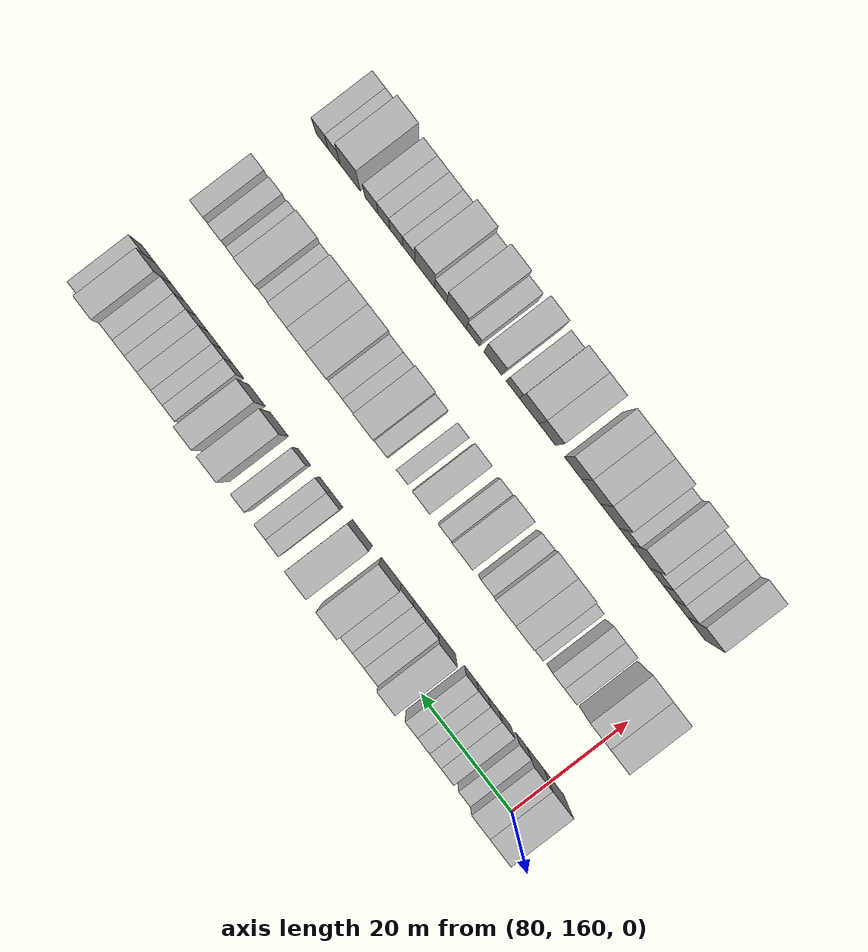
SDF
<sdf version="1.6">
 <world name="default">
  <model name="building_643">
   <static>1</static>
   <pose>82.0000 159.6358 0 0.000000 0.000000 0.000000</pose>
   <link name="link">
    <pose>0 0 4.50 0 0 0</pose>
    <collision name="collision"><geometry><box><size>10.0000 4.3655 9.0000</size></box></geometry></collision>
    <visual name="visual">
     <cast_shadows>0</cast_shadows>
     <geometry><box><size>10.0000 4.3655 9.0000</size></box></geometry>
     <material>
      <script>
       <uri>model://HANNAS_wall/materials/scripts</uri>
       <uri>model://HANNAS_wall/materials/textures</uri>
       <name>vrc/HANNAS_wall</name>
      </script>
     </material>
    </visual>
   </link>
  </model>
  <model name="building_644">
   <static>1</static>
   <pose>82.0000 163.7545 0 0.000000 0.000000 0.000000</pose>
   <link name="link">
    <pose>0 0 4.50 0 0 0</pose>
    <collision name="collision"><geometry><box><size>10.0000 3.8720 9.0000</size></box></geometry></collision>
    <visual name="visual">
     <cast_shadows>0</cast_shadows>
     <geometry><box><size>10.0000 3.8720 9.0000</size></box></geometry>
     <material>
      <script>
       <uri>model://HANNAS_wall/materials/scripts</uri>
       <uri>model://HANNAS_wall/materials/textures</uri>
       <name>vrc/HANNAS_wall</name>
      </script>
     </material>
    </visual>
   </link>
  </model>
  <model name="building_645">
   <static>1</static>
   <pose>82.0000 166.9428 0 0.000000 0.000000 0.000000</pose>
   <link name="link">
    <pose>0 0 3.00 0 0 0</pose>
    <collision name="collision"><geometry><box><size>10.0000 2.5046 6.0000</size></box></geometry></collision>
    <visual name="visual">
     <cast_shadows>0</cast_shadows>
     <geometry><box><size>10.0000 2.5046 6.0000</size></box></geometry>
     <material>
      <script>
       <uri>model://HANNAS_wall/materials/scripts</uri>
       <uri>model://HANNAS_wall/materials/textures</uri>
       <name>vrc/HANNAS_wall</name>
      </script>
     </material>
    </visual>
   </link>
  </model>
  <model name="building_646">
   <static>1</static>
   <pose>82.0000 170.5551 0 0.000000 0.000000 0.000000</pose>
   <link name="link">
    <pose>0 0 3.00 0 0 0</pose>
    <collision name="collision"><geometry><box><size>10.0000 2.7200 6.0000</size></box></geometry></collision>
    <visual name="visual">
     <cast_shadows>0</cast_shadows>
     <geometry><box><size>10.0000 2.7200 6.0000</size></box></geometry>
     <material>
      <script>
       <uri>model://HANNAS_wall/materials/scripts</uri>
       <uri>model://HANNAS_wall/materials/textures</uri>
       <name>vrc/HANNAS_wall</name>
      </script>
     </material>
    </visual>
   </link>
  </model>
  <model name="building_647">
   <static>1</static>
   <pose>82.0000 173.1330 0 0.000000 0.000000 0.000000</pose>
   <link name="link">
    <pose>0 0 3.00 0 0 0</pose>
    <collision name="collision"><geometry><box><size>10.0000 2.4358 6.0000</size></box></geometry></collision>
    <visual name="visual">
     <cast_shadows>0</cast_shadows>
     <geometry><box><size>10.0000 2.4358 6.0000</size></box></geometry>
     <material>
      <script>
       <uri>model://HANNAS_wall/materials/scripts</uri>
       <uri>model://HANNAS_wall/materials/textures</uri>
       <name>vrc/HANNAS_wall</name>
      </script>
     </material>
    </visual>
   </link>
  </model>
  <model name="building_648">
   <static>1</static>
   <pose>82.0000 175.6355 0 0.000000 0.000000 0.000000</pose>
   <link name="link">
    <pose>0 0 3.00 0 0 0</pose>
    <collision name="collision"><geometry><box><size>10.0000 2.5691 6.0000</size></box></geometry></collision>
    <visual name="visual">
     <cast_shadows>0</cast_shadows>
     <geometry><box><size>10.0000 2.5691 6.0000</size></box></geometry>
     <material>
      <script>
       <uri>model://HANNAS_wall/materials/scripts</uri>
       <uri>model://HANNAS_wall/materials/textures</uri>
       <name>vrc/HANNAS_wall</name>
      </script>
     </material>
    </visual>
   </link>
  </model>
  <model name="building_649">
   <static>1</static>
   <pose>82.0000 178.2534 0 0.000000 0.000000 0.000000</pose>
   <link name="link">
    <pose>0 0 3.00 0 0 0</pose>
    <collision name="collision"><geometry><box><size>10.0000 2.6667 6.0000</size></box></geometry></collision>
    <visual name="visual">
     <cast_shadows>0</cast_shadows>
     <geometry><box><size>10.0000 2.6667 6.0000</size></box></geometry>
     <material>
      <script>
       <uri>model://HANNAS_wall/materials/scripts</uri>
       <uri>model://HANNAS_wall/materials/textures</uri>
       <name>vrc/HANNAS_wall</name>
      </script>
     </material>
    </visual>
   </link>
  </model>
  <model name="building_650">
   <static>1</static>
   <pose>82.0000 183.4913 0 0.000000 0.000000 0.000000</pose>
   <link name="link">
    <pose>0 0 4.50 0 0 0</pose>
    <collision name="collision"><geometry><box><size>10.0000 3.8091 9.0000</size></box></geometry></collision>
    <visual name="visual">
     <cast_shadows>0</cast_shadows>
     <geometry><box><size>10.0000 3.8091 9.0000</size></box></geometry>
     <material>
      <script>
       <uri>model://HANNAS_wall/materials/scripts</uri>
       <uri>model://HANNAS_wall/materials/textures</uri>
       <name>vrc/HANNAS_wall</name>
      </script>
     </material>
    </visual>
   </link>
  </model>
  <model name="building_651">
   <static>1</static>
   <pose>82.0000 186.8532 0 0.000000 0.000000 0.000000</pose>
   <link name="link">
    <pose>0 0 3.00 0 0 0</pose>
    <collision name="collision"><geometry><box><size>10.0000 2.9146 6.0000</size></box></geometry></collision>
    <visual name="visual">
     <cast_shadows>0</cast_shadows>
     <geometry><box><size>10.0000 2.9146 6.0000</size></box></geometry>
     <material>
      <script>
       <uri>model://HANNAS_wall/materials/scripts</uri>
       <uri>model://HANNAS_wall/materials/textures</uri>
       <name>vrc/HANNAS_wall</name>
      </script>
     </material>
    </visual>
   </link>
  </model>
  <model name="building_652">
   <static>1</static>
   <pose>82.0000 189.5749 0 0.000000 0.000000 0.000000</pose>
   <link name="link">
    <pose>0 0 3.00 0 0 0</pose>
    <collision name="collision"><geometry><box><size>10.0000 2.5288 6.0000</size></box></geometry></collision>
    <visual name="visual">
     <cast_shadows>0</cast_shadows>
     <geometry><box><size>10.0000 2.5288 6.0000</size></box></geometry>
     <material>
      <script>
       <uri>model://HANNAS_wall/materials/scripts</uri>
       <uri>model://HANNAS_wall/materials/textures</uri>
       <name>vrc/HANNAS_wall</name>
      </script>
     </material>
    </visual>
   </link>
  </model>
  <model name="building_653">
   <static>1</static>
   <pose>82.0000 192.2486 0 0.000000 0.000000 0.000000</pose>
   <link name="link">
    <pose>0 0 3.00 0 0 0</pose>
    <collision name="collision"><geometry><box><size>10.0000 2.8186 6.0000</size></box></geometry></collision>
    <visual name="visual">
     <cast_shadows>0</cast_shadows>
     <geometry><box><size>10.0000 2.8186 6.0000</size></box></geometry>
     <material>
      <script>
       <uri>model://HANNAS_wall/materials/scripts</uri>
       <uri>model://HANNAS_wall/materials/textures</uri>
       <name>vrc/HANNAS_wall</name>
      </script>
     </material>
    </visual>
   </link>
  </model>
  <model name="building_654">
   <static>1</static>
   <pose>82.0000 195.8621 0 0.000000 0.000000 0.000000</pose>
   <link name="link">
    <pose>0 0 4.50 0 0 0</pose>
    <collision name="collision"><geometry><box><size>10.0000 4.4085 9.0000</size></box></geometry></collision>
    <visual name="visual">
     <cast_shadows>0</cast_shadows>
     <geometry><box><size>10.0000 4.4085 9.0000</size></box></geometry>
     <material>
      <script>
       <uri>model://HANNAS_wall/materials/scripts</uri>
       <uri>model://HANNAS_wall/materials/textures</uri>
       <name>vrc/HANNAS_wall</name>
      </script>
     </material>
    </visual>
   </link>
  </model>
  <model name="building_655">
   <static>1</static>
   <pose>82.0000 202.3141 0 0.000000 0.000000 0.000000</pose>
   <link name="link">
    <pose>0 0 4.50 0 0 0</pose>
    <collision name="collision"><geometry><box><size>10.0000 4.4954 9.0000</size></box></geometry></collision>
    <visual name="visual">
     <cast_shadows>0</cast_shadows>
     <geometry><box><size>10.0000 4.4954 9.0000</size></box></geometry>
     <material>
      <script>
       <uri>model://HANNAS_wall/materials/scripts</uri>
       <uri>model://HANNAS_wall/materials/textures</uri>
       <name>vrc/HANNAS_wall</name>
      </script>
     </material>
    </visual>
   </link>
  </model>
  <model name="building_656">
   <static>1</static>
   <pose>82.0000 207.9439 0 0.000000 0.000000 0.000000</pose>
   <link name="link">
    <pose>0 0 3.00 0 0 0</pose>
    <collision name="collision"><geometry><box><size>10.0000 2.7642 6.0000</size></box></geometry></collision>
    <visual name="visual">
     <cast_shadows>0</cast_shadows>
     <geometry><box><size>10.0000 2.7642 6.0000</size></box></geometry>
     <material>
      <script>
       <uri>model://HANNAS_wall/materials/scripts</uri>
       <uri>model://HANNAS_wall/materials/textures</uri>
       <name>vrc/HANNAS_wall</name>
      </script>
     </material>
    </visual>
   </link>
  </model>
  <model name="building_657">
   <static>1</static>
   <pose>82.0000 210.5727 0 0.000000 0.000000 0.000000</pose>
   <link name="link">
    <pose>0 0 3.00 0 0 0</pose>
    <collision name="collision"><geometry><box><size>10.0000 2.4935 6.0000</size></box></geometry></collision>
    <visual name="visual">
     <cast_shadows>0</cast_shadows>
     <geometry><box><size>10.0000 2.4935 6.0000</size></box></geometry>
     <material>
      <script>
       <uri>model://HANNAS_wall/materials/scripts</uri>
       <uri>model://HANNAS_wall/materials/textures</uri>
       <name>vrc/HANNAS_wall</name>
      </script>
     </material>
    </visual>
   </link>
  </model>
  <model name="building_658">
   <static>1</static>
   <pose>82.0000 215.2912 0 0.000000 0.000000 0.000000</pose>
   <link name="link">
    <pose>0 0 3.00 0 0 0</pose>
    <collision name="collision"><geometry><box><size>10.0000 2.9436 6.0000</size></box></geometry></collision>
    <visual name="visual">
     <cast_shadows>0</cast_shadows>
     <geometry><box><size>10.0000 2.9436 6.0000</size></box></geometry>
     <material>
      <script>
       <uri>model://HANNAS_wall/materials/scripts</uri>
       <uri>model://HANNAS_wall/materials/textures</uri>
       <name>vrc/HANNAS_wall</name>
      </script>
     </material>
    </visual>
   </link>
  </model>
  <model name="building_659">
   <static>1</static>
   <pose>82.0000 220.8428 0 0.000000 0.000000 0.000000</pose>
   <link name="link">
    <pose>0 0 4.50 0 0 0</pose>
    <collision name="collision"><geometry><box><size>10.0000 4.1596 9.0000</size></box></geometry></collision>
    <visual name="visual">
     <cast_shadows>0</cast_shadows>
     <geometry><box><size>10.0000 4.1596 9.0000</size></box></geometry>
     <material>
      <script>
       <uri>model://HANNAS_wall/materials/scripts</uri>
       <uri>model://HANNAS_wall/materials/textures</uri>
       <name>vrc/HANNAS_wall</name>
      </script>
     </material>
    </visual>
   </link>
  </model>
  <model name="building_660">
   <static>1</static>
   <pose>82.0000 225.7918 0 0.000000 0.000000 0.000000</pose>
   <link name="link">
    <pose>0 0 4.50 0 0 0</pose>
    <collision name="collision"><geometry><box><size>10.0000 3.7385 9.0000</size></box></geometry></collision>
    <visual name="visual">
     <cast_shadows>0</cast_shadows>
     <geometry><box><size>10.0000 3.7385 9.0000</size></box></geometry>
     <material>
      <script>
       <uri>model://HANNAS_wall/materials/scripts</uri>
       <uri>model://HANNAS_wall/materials/textures</uri>
       <name>vrc/HANNAS_wall</name>
      </script>
     </material>
    </visual>
   </link>
  </model>
  <model name="building_661">
   <static>1</static>
   <pose>82.0000 229.9726 0 0.000000 0.000000 0.000000</pose>
   <link name="link">
    <pose>0 0 3.00 0 0 0</pose>
    <collision name="collision"><geometry><box><size>10.0000 2.6232 6.0000</size></box></geometry></collision>
    <visual name="visual">
     <cast_shadows>0</cast_shadows>
     <geometry><box><size>10.0000 2.6232 6.0000</size></box></geometry>
     <material>
      <script>
       <uri>model://HANNAS_wall/materials/scripts</uri>
       <uri>model://HANNAS_wall/materials/textures</uri>
       <name>vrc/HANNAS_wall</name>
      </script>
     </material>
    </visual>
   </link>
  </model>
  <model name="building_662">
   <static>1</static>
   <pose>82.0000 232.5013 0 0.000000 0.000000 0.000000</pose>
   <link name="link">
    <pose>0 0 3.00 0 0 0</pose>
    <collision name="collision"><geometry><box><size>10.0000 2.4341 6.0000</size></box></geometry></collision>
    <visual name="visual">
     <cast_shadows>0</cast_shadows>
     <geometry><box><size>10.0000 2.4341 6.0000</size></box></geometry>
     <material>
      <script>
       <uri>model://HANNAS_wall/materials/scripts</uri>
       <uri>model://HANNAS_wall/materials/textures</uri>
       <name>vrc/HANNAS_wall</name>
      </script>
     </material>
    </visual>
   </link>
  </model>
  <model name="building_663">
   <static>1</static>
   <pose>82.0000 235.2167 0 0.000000 0.000000 0.000000</pose>
   <link name="link">
    <pose>0 0 3.00 0 0 0</pose>
    <collision name="collision"><geometry><box><size>10.0000 2.9966 6.0000</size></box></geometry></collision>
    <visual name="visual">
     <cast_shadows>0</cast_shadows>
     <geometry><box><size>10.0000 2.9966 6.0000</size></box></geometry>
     <material>
      <script>
       <uri>model://HANNAS_wall/materials/scripts</uri>
       <uri>model://HANNAS_wall/materials/textures</uri>
       <name>vrc/HANNAS_wall</name>
      </script>
     </material>
    </visual>
   </link>
  </model>
  <model name="building_664">
   <static>1</static>
   <pose>82.0000 238.0371 0 0.000000 0.000000 0.000000</pose>
   <link name="link">
    <pose>0 0 3.00 0 0 0</pose>
    <collision name="collision"><geometry><box><size>10.0000 2.6442 6.0000</size></box></geometry></collision>
    <visual name="visual">
     <cast_shadows>0</cast_shadows>
     <geometry><box><size>10.0000 2.6442 6.0000</size></box></geometry>
     <material>
      <script>
       <uri>model://HANNAS_wall/materials/scripts</uri>
       <uri>model://HANNAS_wall/materials/textures</uri>
       <name>vrc/HANNAS_wall</name>
      </script>
     </material>
    </visual>
   </link>
  </model>
  <model name="building_665">
   <static>1</static>
   <pose>82.0000 240.6510 0 0.000000 0.000000 0.000000</pose>
   <link name="link">
    <pose>0 0 3.00 0 0 0</pose>
    <collision name="collision"><geometry><box><size>10.0000 2.5835 6.0000</size></box></geometry></collision>
    <visual name="visual">
     <cast_shadows>0</cast_shadows>
     <geometry><box><size>10.0000 2.5835 6.0000</size></box></geometry>
     <material>
      <script>
       <uri>model://HANNAS_wall/materials/scripts</uri>
       <uri>model://HANNAS_wall/materials/textures</uri>
       <name>vrc/HANNAS_wall</name>
      </script>
     </material>
    </visual>
   </link>
  </model>
  <model name="building_666">
   <static>1</static>
   <pose>82.0000 243.3366 0 0.000000 0.000000 0.000000</pose>
   <link name="link">
    <pose>0 0 3.00 0 0 0</pose>
    <collision name="collision"><geometry><box><size>10.0000 2.7878 6.0000</size></box></geometry></collision>
    <visual name="visual">
     <cast_shadows>0</cast_shadows>
     <geometry><box><size>10.0000 2.7878 6.0000</size></box></geometry>
     <material>
      <script>
       <uri>model://HANNAS_wall/materials/scripts</uri>
       <uri>model://HANNAS_wall/materials/textures</uri>
       <name>vrc/HANNAS_wall</name>
      </script>
     </material>
    </visual>
   </link>
  </model>
  <model name="building_667">
   <static>1</static>
   <pose>82.0000 246.6248 0 0.000000 0.000000 0.000000</pose>
   <link name="link">
    <pose>0 0 4.50 0 0 0</pose>
    <collision name="collision"><geometry><box><size>10.0000 3.7887 9.0000</size></box></geometry></collision>
    <visual name="visual">
     <cast_shadows>0</cast_shadows>
     <geometry><box><size>10.0000 3.7887 9.0000</size></box></geometry>
     <material>
      <script>
       <uri>model://HANNAS_wall/materials/scripts</uri>
       <uri>model://HANNAS_wall/materials/textures</uri>
       <name>vrc/HANNAS_wall</name>
      </script>
     </material>
    </visual>
   </link>
  </model>
  <model name="building_668">
   <static>1</static>
   <pose>82.0000 250.0094 0 0.000000 0.000000 0.000000</pose>
   <link name="link">
    <pose>0 0 3.00 0 0 0</pose>
    <collision name="collision"><geometry><box><size>10.0000 2.9804 6.0000</size></box></geometry></collision>
    <visual name="visual">
     <cast_shadows>0</cast_shadows>
     <geometry><box><size>10.0000 2.9804 6.0000</size></box></geometry>
     <material>
      <script>
       <uri>model://HANNAS_wall/materials/scripts</uri>
       <uri>model://HANNAS_wall/materials/textures</uri>
       <name>vrc/HANNAS_wall</name>
      </script>
     </material>
    </visual>
   </link>
  </model>
  <model name="building_817">
   <static>1</static>
   <pose>101.0000 159.5437 0 0.000000 0.000000 0.000000</pose>
   <link name="link">
    <pose>0 0 4.50 0 0 0</pose>
    <collision name="collision"><geometry><box><size>10.0000 3.9342 9.0000</size></box></geometry></collision>
    <visual name="visual">
     <cast_shadows>0</cast_shadows>
     <geometry><box><size>10.0000 3.9342 9.0000</size></box></geometry>
     <material>
      <script>
       <uri>model://HANNAS_wall/materials/scripts</uri>
       <uri>model://HANNAS_wall/materials/textures</uri>
       <name>vrc/HANNAS_wall</name>
      </script>
     </material>
    </visual>
   </link>
  </model>
  <model name="building_818">
   <static>1</static>
   <pose>101.0000 163.6449 0 0.000000 0.000000 0.000000</pose>
   <link name="link">
    <pose>0 0 4.50 0 0 0</pose>
    <collision name="collision"><geometry><box><size>10.0000 4.2682 9.0000</size></box></geometry></collision>
    <visual name="visual">
     <cast_shadows>0</cast_shadows>
     <geometry><box><size>10.0000 4.2682 9.0000</size></box></geometry>
     <material>
      <script>
       <uri>model://HANNAS_wall/materials/scripts</uri>
       <uri>model://HANNAS_wall/materials/textures</uri>
       <name>vrc/HANNAS_wall</name>
      </script>
     </material>
    </visual>
   </link>
  </model>
  <model name="building_819">
   <static>1</static>
   <pose>101.0000 169.0652 0 0.000000 0.000000 0.000000</pose>
   <link name="link">
    <pose>0 0 3.00 0 0 0</pose>
    <collision name="collision"><geometry><box><size>10.0000 2.5725 6.0000</size></box></geometry></collision>
    <visual name="visual">
     <cast_shadows>0</cast_shadows>
     <geometry><box><size>10.0000 2.5725 6.0000</size></box></geometry>
     <material>
      <script>
       <uri>model://HANNAS_wall/materials/scripts</uri>
       <uri>model://HANNAS_wall/materials/textures</uri>
       <name>vrc/HANNAS_wall</name>
      </script>
     </material>
    </visual>
   </link>
  </model>
  <model name="building_820">
   <static>1</static>
   <pose>101.0000 171.6501 0 0.000000 0.000000 0.000000</pose>
   <link name="link">
    <pose>0 0 3.00 0 0 0</pose>
    <collision name="collision"><geometry><box><size>10.0000 2.5972 6.0000</size></box></geometry></collision>
    <visual name="visual">
     <cast_shadows>0</cast_shadows>
     <geometry><box><size>10.0000 2.5972 6.0000</size></box></geometry>
     <material>
      <script>
       <uri>model://HANNAS_wall/materials/scripts</uri>
       <uri>model://HANNAS_wall/materials/textures</uri>
       <name>vrc/HANNAS_wall</name>
      </script>
     </material>
    </visual>
   </link>
  </model>
  <model name="building_821">
   <static>1</static>
   <pose>101.0000 176.1497 0 0.000000 0.000000 0.000000</pose>
   <link name="link">
    <pose>0 0 3.00 0 0 0</pose>
    <collision name="collision"><geometry><box><size>10.0000 2.4021 6.0000</size></box></geometry></collision>
    <visual name="visual">
     <cast_shadows>0</cast_shadows>
     <geometry><box><size>10.0000 2.4021 6.0000</size></box></geometry>
     <material>
      <script>
       <uri>model://HANNAS_wall/materials/scripts</uri>
       <uri>model://HANNAS_wall/materials/textures</uri>
       <name>vrc/HANNAS_wall</name>
      </script>
     </material>
    </visual>
   </link>
  </model>
  <model name="building_822">
   <static>1</static>
   <pose>101.0000 179.2905 0 0.000000 0.000000 0.000000</pose>
   <link name="link">
    <pose>0 0 4.50 0 0 0</pose>
    <collision name="collision"><geometry><box><size>10.0000 3.8795 9.0000</size></box></geometry></collision>
    <visual name="visual">
     <cast_shadows>0</cast_shadows>
     <geometry><box><size>10.0000 3.8795 9.0000</size></box></geometry>
     <material>
      <script>
       <uri>model://HANNAS_wall/materials/scripts</uri>
       <uri>model://HANNAS_wall/materials/textures</uri>
       <name>vrc/HANNAS_wall</name>
      </script>
     </material>
    </visual>
   </link>
  </model>
  <model name="building_823">
   <static>1</static>
   <pose>101.0000 183.3394 0 0.000000 0.000000 0.000000</pose>
   <link name="link">
    <pose>0 0 4.50 0 0 0</pose>
    <collision name="collision"><geometry><box><size>10.0000 4.2184 9.0000</size></box></geometry></collision>
    <visual name="visual">
     <cast_shadows>0</cast_shadows>
     <geometry><box><size>10.0000 4.2184 9.0000</size></box></geometry>
     <material>
      <script>
       <uri>model://HANNAS_wall/materials/scripts</uri>
       <uri>model://HANNAS_wall/materials/textures</uri>
       <name>vrc/HANNAS_wall</name>
      </script>
     </material>
    </visual>
   </link>
  </model>
  <model name="building_824">
   <static>1</static>
   <pose>101.0000 186.8375 0 0.000000 0.000000 0.000000</pose>
   <link name="link">
    <pose>0 0 3.00 0 0 0</pose>
    <collision name="collision"><geometry><box><size>10.0000 2.7777 6.0000</size></box></geometry></collision>
    <visual name="visual">
     <cast_shadows>0</cast_shadows>
     <geometry><box><size>10.0000 2.7777 6.0000</size></box></geometry>
     <material>
      <script>
       <uri>model://HANNAS_wall/materials/scripts</uri>
       <uri>model://HANNAS_wall/materials/textures</uri>
       <name>vrc/HANNAS_wall</name>
      </script>
     </material>
    </visual>
   </link>
  </model>
  <model name="building_825">
   <static>1</static>
   <pose>101.0000 192.3333 0 0.000000 0.000000 0.000000</pose>
   <link name="link">
    <pose>0 0 4.50 0 0 0</pose>
    <collision name="collision"><geometry><box><size>10.0000 4.2139 9.0000</size></box></geometry></collision>
    <visual name="visual">
     <cast_shadows>0</cast_shadows>
     <geometry><box><size>10.0000 4.2139 9.0000</size></box></geometry>
     <material>
      <script>
       <uri>model://HANNAS_wall/materials/scripts</uri>
       <uri>model://HANNAS_wall/materials/textures</uri>
       <name>vrc/HANNAS_wall</name>
      </script>
     </material>
    </visual>
   </link>
  </model>
  <model name="building_826">
   <static>1</static>
   <pose>101.0000 195.7823 0 0.000000 0.000000 0.000000</pose>
   <link name="link">
    <pose>0 0 3.00 0 0 0</pose>
    <collision name="collision"><geometry><box><size>10.0000 2.6841 6.0000</size></box></geometry></collision>
    <visual name="visual">
     <cast_shadows>0</cast_shadows>
     <geometry><box><size>10.0000 2.6841 6.0000</size></box></geometry>
     <material>
      <script>
       <uri>model://HANNAS_wall/materials/scripts</uri>
       <uri>model://HANNAS_wall/materials/textures</uri>
       <name>vrc/HANNAS_wall</name>
      </script>
     </material>
    </visual>
   </link>
  </model>
  <model name="building_827">
   <static>1</static>
   <pose>101.0000 200.9256 0 0.000000 0.000000 0.000000</pose>
   <link name="link">
    <pose>0 0 4.50 0 0 0</pose>
    <collision name="collision"><geometry><box><size>10.0000 3.6024 9.0000</size></box></geometry></collision>
    <visual name="visual">
     <cast_shadows>0</cast_shadows>
     <geometry><box><size>10.0000 3.6024 9.0000</size></box></geometry>
     <material>
      <script>
       <uri>model://HANNAS_wall/materials/scripts</uri>
       <uri>model://HANNAS_wall/materials/textures</uri>
       <name>vrc/HANNAS_wall</name>
      </script>
     </material>
    </visual>
   </link>
  </model>
  <model name="building_828">
   <static>1</static>
   <pose>101.0000 204.9692 0 0.000000 0.000000 0.000000</pose>
   <link name="link">
    <pose>0 0 3.00 0 0 0</pose>
    <collision name="collision"><geometry><box><size>10.0000 2.4849 6.0000</size></box></geometry></collision>
    <visual name="visual">
     <cast_shadows>0</cast_shadows>
     <geometry><box><size>10.0000 2.4849 6.0000</size></box></geometry>
     <material>
      <script>
       <uri>model://HANNAS_wall/materials/scripts</uri>
       <uri>model://HANNAS_wall/materials/textures</uri>
       <name>vrc/HANNAS_wall</name>
      </script>
     </material>
    </visual>
   </link>
  </model>
  <model name="building_829">
   <static>1</static>
   <pose>101.0000 209.5635 0 0.000000 0.000000 0.000000</pose>
   <link name="link">
    <pose>0 0 3.00 0 0 0</pose>
    <collision name="collision"><geometry><box><size>10.0000 2.7037 6.0000</size></box></geometry></collision>
    <visual name="visual">
     <cast_shadows>0</cast_shadows>
     <geometry><box><size>10.0000 2.7037 6.0000</size></box></geometry>
     <material>
      <script>
       <uri>model://HANNAS_wall/materials/scripts</uri>
       <uri>model://HANNAS_wall/materials/textures</uri>
       <name>vrc/HANNAS_wall</name>
      </script>
     </material>
    </visual>
   </link>
  </model>
  <model name="building_830">
   <static>1</static>
   <pose>101.0000 213.0333 0 0.000000 0.000000 0.000000</pose>
   <link name="link">
    <pose>0 0 4.50 0 0 0</pose>
    <collision name="collision"><geometry><box><size>10.0000 4.2359 9.0000</size></box></geometry></collision>
    <visual name="visual">
     <cast_shadows>0</cast_shadows>
     <geometry><box><size>10.0000 4.2359 9.0000</size></box></geometry>
     <material>
      <script>
       <uri>model://HANNAS_wall/materials/scripts</uri>
       <uri>model://HANNAS_wall/materials/textures</uri>
       <name>vrc/HANNAS_wall</name>
      </script>
     </material>
    </visual>
   </link>
  </model>
  <model name="building_831">
   <static>1</static>
   <pose>101.0000 216.4356 0 0.000000 0.000000 0.000000</pose>
   <link name="link">
    <pose>0 0 3.00 0 0 0</pose>
    <collision name="collision"><geometry><box><size>10.0000 2.5686 6.0000</size></box></geometry></collision>
    <visual name="visual">
     <cast_shadows>0</cast_shadows>
     <geometry><box><size>10.0000 2.5686 6.0000</size></box></geometry>
     <material>
      <script>
       <uri>model://HANNAS_wall/materials/scripts</uri>
       <uri>model://HANNAS_wall/materials/textures</uri>
       <name>vrc/HANNAS_wall</name>
      </script>
     </material>
    </visual>
   </link>
  </model>
  <model name="building_832">
   <static>1</static>
   <pose>101.0000 219.2179 0 0.000000 0.000000 0.000000</pose>
   <link name="link">
    <pose>0 0 3.00 0 0 0</pose>
    <collision name="collision"><geometry><box><size>10.0000 2.9961 6.0000</size></box></geometry></collision>
    <visual name="visual">
     <cast_shadows>0</cast_shadows>
     <geometry><box><size>10.0000 2.9961 6.0000</size></box></geometry>
     <material>
      <script>
       <uri>model://HANNAS_wall/materials/scripts</uri>
       <uri>model://HANNAS_wall/materials/textures</uri>
       <name>vrc/HANNAS_wall</name>
      </script>
     </material>
    </visual>
   </link>
  </model>
  <model name="building_833">
   <static>1</static>
   <pose>101.0000 222.8578 0 0.000000 0.000000 0.000000</pose>
   <link name="link">
    <pose>0 0 4.50 0 0 0</pose>
    <collision name="collision"><geometry><box><size>10.0000 4.2836 9.0000</size></box></geometry></collision>
    <visual name="visual">
     <cast_shadows>0</cast_shadows>
     <geometry><box><size>10.0000 4.2836 9.0000</size></box></geometry>
     <material>
      <script>
       <uri>model://HANNAS_wall/materials/scripts</uri>
       <uri>model://HANNAS_wall/materials/textures</uri>
       <name>vrc/HANNAS_wall</name>
      </script>
     </material>
    </visual>
   </link>
  </model>
  <model name="building_834">
   <static>1</static>
   <pose>101.0000 226.9373 0 0.000000 0.000000 0.000000</pose>
   <link name="link">
    <pose>0 0 4.50 0 0 0</pose>
    <collision name="collision"><geometry><box><size>10.0000 3.8755 9.0000</size></box></geometry></collision>
    <visual name="visual">
     <cast_shadows>0</cast_shadows>
     <geometry><box><size>10.0000 3.8755 9.0000</size></box></geometry>
     <material>
      <script>
       <uri>model://HANNAS_wall/materials/scripts</uri>
       <uri>model://HANNAS_wall/materials/textures</uri>
       <name>vrc/HANNAS_wall</name>
      </script>
     </material>
    </visual>
   </link>
  </model>
  <model name="building_835">
   <static>1</static>
   <pose>101.0000 230.8786 0 0.000000 0.000000 0.000000</pose>
   <link name="link">
    <pose>0 0 4.50 0 0 0</pose>
    <collision name="collision"><geometry><box><size>10.0000 4.0069 9.0000</size></box></geometry></collision>
    <visual name="visual">
     <cast_shadows>0</cast_shadows>
     <geometry><box><size>10.0000 4.0069 9.0000</size></box></geometry>
     <material>
      <script>
       <uri>model://HANNAS_wall/materials/scripts</uri>
       <uri>model://HANNAS_wall/materials/textures</uri>
       <name>vrc/HANNAS_wall</name>
      </script>
     </material>
    </visual>
   </link>
  </model>
  <model name="building_836">
   <static>1</static>
   <pose>101.0000 234.2108 0 0.000000 0.000000 0.000000</pose>
   <link name="link">
    <pose>0 0 3.00 0 0 0</pose>
    <collision name="collision"><geometry><box><size>10.0000 2.6575 6.0000</size></box></geometry></collision>
    <visual name="visual">
     <cast_shadows>0</cast_shadows>
     <geometry><box><size>10.0000 2.6575 6.0000</size></box></geometry>
     <material>
      <script>
       <uri>model://HANNAS_wall/materials/scripts</uri>
       <uri>model://HANNAS_wall/materials/textures</uri>
       <name>vrc/HANNAS_wall</name>
      </script>
     </material>
    </visual>
   </link>
  </model>
  <model name="building_837">
   <static>1</static>
   <pose>101.0000 237.7543 0 0.000000 0.000000 0.000000</pose>
   <link name="link">
    <pose>0 0 4.50 0 0 0</pose>
    <collision name="collision"><geometry><box><size>10.0000 4.4295 9.0000</size></box></geometry></collision>
    <visual name="visual">
     <cast_shadows>0</cast_shadows>
     <geometry><box><size>10.0000 4.4295 9.0000</size></box></geometry>
     <material>
      <script>
       <uri>model://HANNAS_wall/materials/scripts</uri>
       <uri>model://HANNAS_wall/materials/textures</uri>
       <name>vrc/HANNAS_wall</name>
      </script>
     </material>
    </visual>
   </link>
  </model>
  <model name="building_838">
   <static>1</static>
   <pose>101.0000 241.2637 0 0.000000 0.000000 0.000000</pose>
   <link name="link">
    <pose>0 0 3.00 0 0 0</pose>
    <collision name="collision"><geometry><box><size>10.0000 2.5895 6.0000</size></box></geometry></collision>
    <visual name="visual">
     <cast_shadows>0</cast_shadows>
     <geometry><box><size>10.0000 2.5895 6.0000</size></box></geometry>
     <material>
      <script>
       <uri>model://HANNAS_wall/materials/scripts</uri>
       <uri>model://HANNAS_wall/materials/textures</uri>
       <name>vrc/HANNAS_wall</name>
      </script>
     </material>
    </visual>
   </link>
  </model>
  <model name="building_839">
   <static>1</static>
   <pose>101.0000 244.9861 0 0.000000 0.000000 0.000000</pose>
   <link name="link">
    <pose>0 0 3.00 0 0 0</pose>
    <collision name="collision"><geometry><box><size>10.0000 2.8553 6.0000</size></box></geometry></collision>
    <visual name="visual">
     <cast_shadows>0</cast_shadows>
     <geometry><box><size>10.0000 2.8553 6.0000</size></box></geometry>
     <material>
      <script>
       <uri>model://HANNAS_wall/materials/scripts</uri>
       <uri>model://HANNAS_wall/materials/textures</uri>
       <name>vrc/HANNAS_wall</name>
      </script>
     </material>
    </visual>
   </link>
  </model>
  <model name="building_840">
   <static>1</static>
   <pose>101.0000 248.8089 0 0.000000 0.000000 0.000000</pose>
   <link name="link">
    <pose>0 0 3.00 0 0 0</pose>
    <collision name="collision"><geometry><box><size>10.0000 2.7903 6.0000</size></box></geometry></collision>
    <visual name="visual">
     <cast_shadows>0</cast_shadows>
     <geometry><box><size>10.0000 2.7903 6.0000</size></box></geometry>
     <material>
      <script>
       <uri>model://HANNAS_wall/materials/scripts</uri>
       <uri>model://HANNAS_wall/materials/textures</uri>
       <name>vrc/HANNAS_wall</name>
      </script>
     </material>
    </visual>
   </link>
  </model>
  <model name="building_994">
   <static>1</static>
   <pose>120.0000 164.4595 0 0.000000 0.000000 0.000000</pose>
   <link name="link">
    <pose>0 0 4.50 0 0 0</pose>
    <collision name="collision"><geometry><box><size>10.0000 3.9476 9.0000</size></box></geometry></collision>
    <visual name="visual">
     <cast_shadows>0</cast_shadows>
     <geometry><box><size>10.0000 3.9476 9.0000</size></box></geometry>
     <material>
      <script>
       <uri>model://HANNAS_wall/materials/scripts</uri>
       <uri>model://HANNAS_wall/materials/textures</uri>
       <name>vrc/HANNAS_wall</name>
      </script>
     </material>
    </visual>
   </link>
  </model>
  <model name="building_995">
   <static>1</static>
   <pose>120.0000 167.8917 0 0.000000 0.000000 0.000000</pose>
   <link name="link">
    <pose>0 0 3.00 0 0 0</pose>
    <collision name="collision"><geometry><box><size>10.0000 2.9169 6.0000</size></box></geometry></collision>
    <visual name="visual">
     <cast_shadows>0</cast_shadows>
     <geometry><box><size>10.0000 2.9169 6.0000</size></box></geometry>
     <material>
      <script>
       <uri>model://HANNAS_wall/materials/scripts</uri>
       <uri>model://HANNAS_wall/materials/textures</uri>
       <name>vrc/HANNAS_wall</name>
      </script>
     </material>
    </visual>
   </link>
  </model>
  <model name="building_996">
   <static>1</static>
   <pose>120.0000 170.6397 0 0.000000 0.000000 0.000000</pose>
   <link name="link">
    <pose>0 0 3.00 0 0 0</pose>
    <collision name="collision"><geometry><box><size>10.0000 2.5790 6.0000</size></box></geometry></collision>
    <visual name="visual">
     <cast_shadows>0</cast_shadows>
     <geometry><box><size>10.0000 2.5790 6.0000</size></box></geometry>
     <material>
      <script>
       <uri>model://HANNAS_wall/materials/scripts</uri>
       <uri>model://HANNAS_wall/materials/textures</uri>
       <name>vrc/HANNAS_wall</name>
      </script>
     </material>
    </visual>
   </link>
  </model>
  <model name="building_997">
   <static>1</static>
   <pose>120.0000 173.3771 0 0.000000 0.000000 0.000000</pose>
   <link name="link">
    <pose>0 0 3.00 0 0 0</pose>
    <collision name="collision"><geometry><box><size>10.0000 2.8957 6.0000</size></box></geometry></collision>
    <visual name="visual">
     <cast_shadows>0</cast_shadows>
     <geometry><box><size>10.0000 2.8957 6.0000</size></box></geometry>
     <material>
      <script>
       <uri>model://HANNAS_wall/materials/scripts</uri>
       <uri>model://HANNAS_wall/materials/textures</uri>
       <name>vrc/HANNAS_wall</name>
      </script>
     </material>
    </visual>
   </link>
  </model>
  <model name="building_998">
   <static>1</static>
   <pose>120.0000 176.8606 0 0.000000 0.000000 0.000000</pose>
   <link name="link">
    <pose>0 0 4.50 0 0 0</pose>
    <collision name="collision"><geometry><box><size>10.0000 4.0713 9.0000</size></box></geometry></collision>
    <visual name="visual">
     <cast_shadows>0</cast_shadows>
     <geometry><box><size>10.0000 4.0713 9.0000</size></box></geometry>
     <material>
      <script>
       <uri>model://HANNAS_wall/materials/scripts</uri>
       <uri>model://HANNAS_wall/materials/textures</uri>
       <name>vrc/HANNAS_wall</name>
      </script>
     </material>
    </visual>
   </link>
  </model>
  <model name="building_999">
   <static>1</static>
   <pose>120.0000 180.2594 0 0.000000 0.000000 0.000000</pose>
   <link name="link">
    <pose>0 0 3.00 0 0 0</pose>
    <collision name="collision"><geometry><box><size>10.0000 2.7263 6.0000</size></box></geometry></collision>
    <visual name="visual">
     <cast_shadows>0</cast_shadows>
     <geometry><box><size>10.0000 2.7263 6.0000</size></box></geometry>
     <material>
      <script>
       <uri>model://HANNAS_wall/materials/scripts</uri>
       <uri>model://HANNAS_wall/materials/textures</uri>
       <name>vrc/HANNAS_wall</name>
      </script>
     </material>
    </visual>
   </link>
  </model>
  <model name="building_1000">
   <static>1</static>
   <pose>120.0000 183.7013 0 0.000000 0.000000 0.000000</pose>
   <link name="link">
    <pose>0 0 4.50 0 0 0</pose>
    <collision name="collision"><geometry><box><size>10.0000 4.1574 9.0000</size></box></geometry></collision>
    <visual name="visual">
     <cast_shadows>0</cast_shadows>
     <geometry><box><size>10.0000 4.1574 9.0000</size></box></geometry>
     <material>
      <script>
       <uri>model://HANNAS_wall/materials/scripts</uri>
       <uri>model://HANNAS_wall/materials/textures</uri>
       <name>vrc/HANNAS_wall</name>
      </script>
     </material>
    </visual>
   </link>
  </model>
  <model name="building_1001">
   <static>1</static>
   <pose>120.0000 187.8891 0 0.000000 0.000000 0.000000</pose>
   <link name="link">
    <pose>0 0 4.50 0 0 0</pose>
    <collision name="collision"><geometry><box><size>10.0000 4.2182 9.0000</size></box></geometry></collision>
    <visual name="visual">
     <cast_shadows>0</cast_shadows>
     <geometry><box><size>10.0000 4.2182 9.0000</size></box></geometry>
     <material>
      <script>
       <uri>model://HANNAS_wall/materials/scripts</uri>
       <uri>model://HANNAS_wall/materials/textures</uri>
       <name>vrc/HANNAS_wall</name>
      </script>
     </material>
    </visual>
   </link>
  </model>
  <model name="building_1002">
   <static>1</static>
   <pose>120.0000 191.8864 0 0.000000 0.000000 0.000000</pose>
   <link name="link">
    <pose>0 0 4.50 0 0 0</pose>
    <collision name="collision"><geometry><box><size>10.0000 3.7764 9.0000</size></box></geometry></collision>
    <visual name="visual">
     <cast_shadows>0</cast_shadows>
     <geometry><box><size>10.0000 3.7764 9.0000</size></box></geometry>
     <material>
      <script>
       <uri>model://HANNAS_wall/materials/scripts</uri>
       <uri>model://HANNAS_wall/materials/textures</uri>
       <name>vrc/HANNAS_wall</name>
      </script>
     </material>
    </visual>
   </link>
  </model>
  <model name="building_1003">
   <static>1</static>
   <pose>120.0000 197.6177 0 0.000000 0.000000 0.000000</pose>
   <link name="link">
    <pose>0 0 4.50 0 0 0</pose>
    <collision name="collision"><geometry><box><size>10.0000 3.6862 9.0000</size></box></geometry></collision>
    <visual name="visual">
     <cast_shadows>0</cast_shadows>
     <geometry><box><size>10.0000 3.6862 9.0000</size></box></geometry>
     <material>
      <script>
       <uri>model://HANNAS_wall/materials/scripts</uri>
       <uri>model://HANNAS_wall/materials/textures</uri>
       <name>vrc/HANNAS_wall</name>
      </script>
     </material>
    </visual>
   </link>
  </model>
  <model name="building_1004">
   <static>1</static>
   <pose>120.0000 201.6398 0 0.000000 0.000000 0.000000</pose>
   <link name="link">
    <pose>0 0 4.50 0 0 0</pose>
    <collision name="collision"><geometry><box><size>10.0000 4.3581 9.0000</size></box></geometry></collision>
    <visual name="visual">
     <cast_shadows>0</cast_shadows>
     <geometry><box><size>10.0000 4.3581 9.0000</size></box></geometry>
     <material>
      <script>
       <uri>model://HANNAS_wall/materials/scripts</uri>
       <uri>model://HANNAS_wall/materials/textures</uri>
       <name>vrc/HANNAS_wall</name>
      </script>
     </material>
    </visual>
   </link>
  </model>
  <model name="building_1005">
   <static>1</static>
   <pose>120.0000 205.2839 0 0.000000 0.000000 0.000000</pose>
   <link name="link">
    <pose>0 0 3.00 0 0 0</pose>
    <collision name="collision"><geometry><box><size>10.0000 2.9300 6.0000</size></box></geometry></collision>
    <visual name="visual">
     <cast_shadows>0</cast_shadows>
     <geometry><box><size>10.0000 2.9300 6.0000</size></box></geometry>
     <material>
      <script>
       <uri>model://HANNAS_wall/materials/scripts</uri>
       <uri>model://HANNAS_wall/materials/textures</uri>
       <name>vrc/HANNAS_wall</name>
      </script>
     </material>
    </visual>
   </link>
  </model>
  <model name="building_1006">
   <static>1</static>
   <pose>120.0000 209.7332 0 0.000000 0.000000 0.000000</pose>
   <link name="link">
    <pose>0 0 4.50 0 0 0</pose>
    <collision name="collision"><geometry><box><size>10.0000 3.9687 9.0000</size></box></geometry></collision>
    <visual name="visual">
     <cast_shadows>0</cast_shadows>
     <geometry><box><size>10.0000 3.9687 9.0000</size></box></geometry>
     <material>
      <script>
       <uri>model://HANNAS_wall/materials/scripts</uri>
       <uri>model://HANNAS_wall/materials/textures</uri>
       <name>vrc/HANNAS_wall</name>
      </script>
     </material>
    </visual>
   </link>
  </model>
  <model name="building_1007">
   <static>1</static>
   <pose>120.0000 214.2066 0 0.000000 0.000000 0.000000</pose>
   <link name="link">
    <pose>0 0 3.00 0 0 0</pose>
    <collision name="collision"><geometry><box><size>10.0000 2.9782 6.0000</size></box></geometry></collision>
    <visual name="visual">
     <cast_shadows>0</cast_shadows>
     <geometry><box><size>10.0000 2.9782 6.0000</size></box></geometry>
     <material>
      <script>
       <uri>model://HANNAS_wall/materials/scripts</uri>
       <uri>model://HANNAS_wall/materials/textures</uri>
       <name>vrc/HANNAS_wall</name>
      </script>
     </material>
    </visual>
   </link>
  </model>
  <model name="building_1008">
   <static>1</static>
   <pose>120.0000 217.8416 0 0.000000 0.000000 0.000000</pose>
   <link name="link">
    <pose>0 0 4.50 0 0 0</pose>
    <collision name="collision"><geometry><box><size>10.0000 4.2918 9.0000</size></box></geometry></collision>
    <visual name="visual">
     <cast_shadows>0</cast_shadows>
     <geometry><box><size>10.0000 4.2918 9.0000</size></box></geometry>
     <material>
      <script>
       <uri>model://HANNAS_wall/materials/scripts</uri>
       <uri>model://HANNAS_wall/materials/textures</uri>
       <name>vrc/HANNAS_wall</name>
      </script>
     </material>
    </visual>
   </link>
  </model>
  <model name="building_1009">
   <static>1</static>
   <pose>120.0000 221.3407 0 0.000000 0.000000 0.000000</pose>
   <link name="link">
    <pose>0 0 3.00 0 0 0</pose>
    <collision name="collision"><geometry><box><size>10.0000 2.7063 6.0000</size></box></geometry></collision>
    <visual name="visual">
     <cast_shadows>0</cast_shadows>
     <geometry><box><size>10.0000 2.7063 6.0000</size></box></geometry>
     <material>
      <script>
       <uri>model://HANNAS_wall/materials/scripts</uri>
       <uri>model://HANNAS_wall/materials/textures</uri>
       <name>vrc/HANNAS_wall</name>
      </script>
     </material>
    </visual>
   </link>
  </model>
  <model name="building_1010">
   <static>1</static>
   <pose>120.0000 224.8782 0 0.000000 0.000000 0.000000</pose>
   <link name="link">
    <pose>0 0 4.50 0 0 0</pose>
    <collision name="collision"><geometry><box><size>10.0000 4.3688 9.0000</size></box></geometry></collision>
    <visual name="visual">
     <cast_shadows>0</cast_shadows>
     <geometry><box><size>10.0000 4.3688 9.0000</size></box></geometry>
     <material>
      <script>
       <uri>model://HANNAS_wall/materials/scripts</uri>
       <uri>model://HANNAS_wall/materials/textures</uri>
       <name>vrc/HANNAS_wall</name>
      </script>
     </material>
    </visual>
   </link>
  </model>
  <model name="building_1011">
   <static>1</static>
   <pose>120.0000 228.3786 0 0.000000 0.000000 0.000000</pose>
   <link name="link">
    <pose>0 0 3.00 0 0 0</pose>
    <collision name="collision"><geometry><box><size>10.0000 2.6319 6.0000</size></box></geometry></collision>
    <visual name="visual">
     <cast_shadows>0</cast_shadows>
     <geometry><box><size>10.0000 2.6319 6.0000</size></box></geometry>
     <material>
      <script>
       <uri>model://HANNAS_wall/materials/scripts</uri>
       <uri>model://HANNAS_wall/materials/textures</uri>
       <name>vrc/HANNAS_wall</name>
      </script>
     </material>
    </visual>
   </link>
  </model>
  <model name="building_1012">
   <static>1</static>
   <pose>120.0000 231.1679 0 0.000000 0.000000 0.000000</pose>
   <link name="link">
    <pose>0 0 3.00 0 0 0</pose>
    <collision name="collision"><geometry><box><size>10.0000 2.9466 6.0000</size></box></geometry></collision>
    <visual name="visual">
     <cast_shadows>0</cast_shadows>
     <geometry><box><size>10.0000 2.9466 6.0000</size></box></geometry>
     <material>
      <script>
       <uri>model://HANNAS_wall/materials/scripts</uri>
       <uri>model://HANNAS_wall/materials/textures</uri>
       <name>vrc/HANNAS_wall</name>
      </script>
     </material>
    </visual>
   </link>
  </model>
  <model name="building_1013">
   <static>1</static>
   <pose>120.0000 233.9471 0 0.000000 0.000000 0.000000</pose>
   <link name="link">
    <pose>0 0 3.00 0 0 0</pose>
    <collision name="collision"><geometry><box><size>10.0000 2.6117 6.0000</size></box></geometry></collision>
    <visual name="visual">
     <cast_shadows>0</cast_shadows>
     <geometry><box><size>10.0000 2.6117 6.0000</size></box></geometry>
     <material>
      <script>
       <uri>model://HANNAS_wall/materials/scripts</uri>
       <uri>model://HANNAS_wall/materials/textures</uri>
       <name>vrc/HANNAS_wall</name>
      </script>
     </material>
    </visual>
   </link>
  </model>
  <model name="building_1014">
   <static>1</static>
   <pose>120.0000 236.7453 0 0.000000 0.000000 0.000000</pose>
   <link name="link">
    <pose>0 0 3.00 0 0 0</pose>
    <collision name="collision"><geometry><box><size>10.0000 2.9847 6.0000</size></box></geometry></collision>
    <visual name="visual">
     <cast_shadows>0</cast_shadows>
     <geometry><box><size>10.0000 2.9847 6.0000</size></box></geometry>
     <material>
      <script>
       <uri>model://HANNAS_wall/materials/scripts</uri>
       <uri>model://HANNAS_wall/materials/textures</uri>
       <name>vrc/HANNAS_wall</name>
      </script>
     </material>
    </visual>
   </link>
  </model>
  <model name="building_1015">
   <static>1</static>
   <pose>120.0000 241.4700 0 0.000000 0.000000 0.000000</pose>
   <link name="link">
    <pose>0 0 4.50 0 0 0</pose>
    <collision name="collision"><geometry><box><size>10.0000 4.4649 9.0000</size></box></geometry></collision>
    <visual name="visual">
     <cast_shadows>0</cast_shadows>
     <geometry><box><size>10.0000 4.4649 9.0000</size></box></geometry>
     <material>
      <script>
       <uri>model://HANNAS_wall/materials/scripts</uri>
       <uri>model://HANNAS_wall/materials/textures</uri>
       <name>vrc/HANNAS_wall</name>
      </script>
     </material>
    </visual>
   </link>
  </model>
  <model name="building_1016">
   <static>1</static>
   <pose>120.0000 245.0068 0 0.000000 0.000000 0.000000</pose>
   <link name="link">
    <pose>0 0 3.00 0 0 0</pose>
    <collision name="collision"><geometry><box><size>10.0000 2.6086 6.0000</size></box></geometry></collision>
    <visual name="visual">
     <cast_shadows>0</cast_shadows>
     <geometry><box><size>10.0000 2.6086 6.0000</size></box></geometry>
     <material>
      <script>
       <uri>model://HANNAS_wall/materials/scripts</uri>
       <uri>model://HANNAS_wall/materials/textures</uri>
       <name>vrc/HANNAS_wall</name>
      </script>
     </material>
    </visual>
   </link>
  </model>
  <model name="building_1017">
   <static>1</static>
   <pose>120.0000 247.7147 0 0.000000 0.000000 0.000000</pose>
   <link name="link">
    <pose>0 0 3.00 0 0 0</pose>
    <collision name="collision"><geometry><box><size>10.0000 2.8072 6.0000</size></box></geometry></collision>
    <visual name="visual">
     <cast_shadows>0</cast_shadows>
     <geometry><box><size>10.0000 2.8072 6.0000</size></box></geometry>
     <material>
      <script>
       <uri>model://HANNAS_wall/materials/scripts</uri>
       <uri>model://HANNAS_wall/materials/textures</uri>
       <name>vrc/HANNAS_wall</name>
      </script>
     </material>
    </visual>
   </link>
  </model>
 </world>
</sdf>
